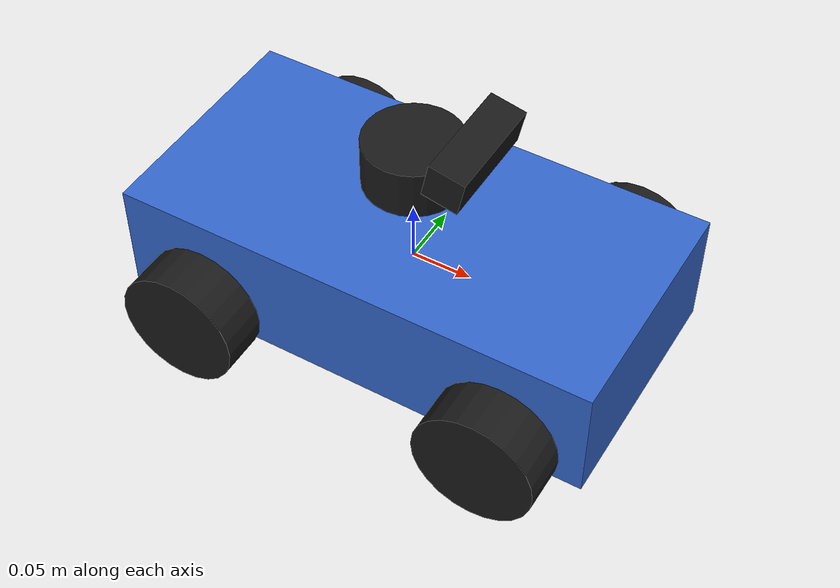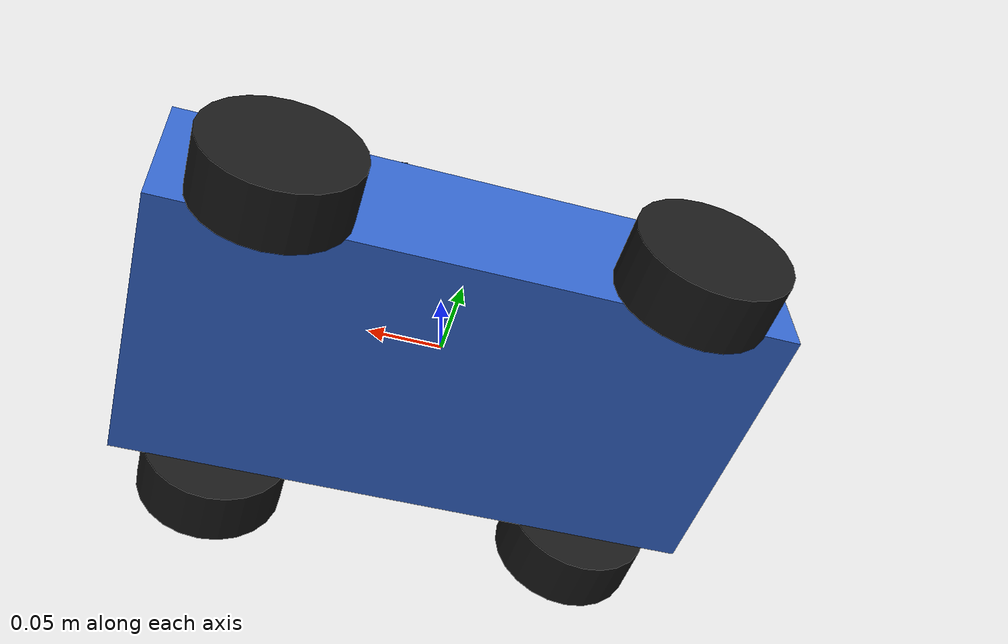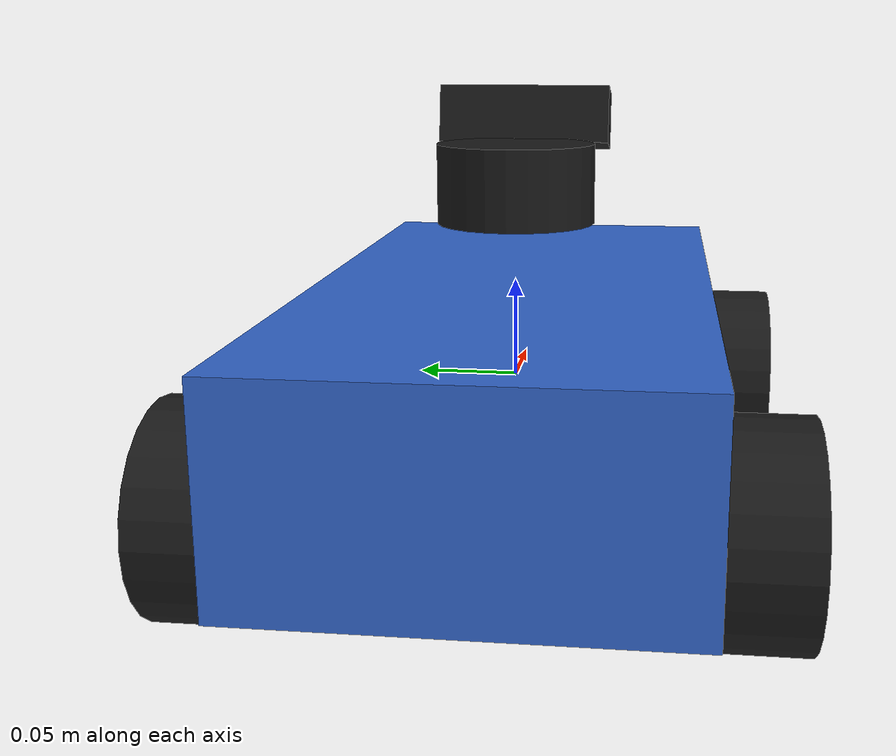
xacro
<?xml version="1.0"?>
<robot name="four_wheel_bot" xmlns:xacro="http://www.ros.org/wiki/xacro">
  <material name="blue"><color rgba="0.2 0.4 0.8 1"/></material>
  <material name="black"><color rgba="0.1 0.1 0.1 1"/></material>

  <link name="base_link">
    <visual>
      <geometry><box size="0.4 0.2 0.1"/></geometry>
      <material name="blue"/>
    </visual>
    <collision><geometry><box size="0.4 0.2 0.1"/></geometry></collision>
    <inertial>
      <mass value="5.0"/>
      <inertia ixx="0.0208" iyy="0.0708" izz="0.0833" ixy="0" ixz="0" iyz="0"/>
    </inertial>
  </link>
  <gazebo reference="base_link"><material>Gazebo/Blue</material></gazebo>

  <xacro:macro name="wheel" params="name x y">
    <link name="${name}_wheel">
      <visual>
        <origin rpy="1.5708 0 0"/>
        <geometry><cylinder radius="0.05" length="0.04"/></geometry>
        <material name="black"/>
      </visual>
      <collision>
        <geometry><sphere radius="0.05"/></geometry>
      </collision>
      <inertial>
        <mass value="0.3"/>
        <inertia ixx="0.000228" iyy="0.000375" izz="0.000228" ixy="0" ixz="0" iyz="0"/>
      </inertial>
    </link>
    <joint name="${name}_wheel_joint" type="continuous">
      <parent link="base_link"/><child link="${name}_wheel"/>
      <origin xyz="${x} ${y} -0.03"/><axis xyz="0 1 0"/>
      <limit effort="10" velocity="20"/>
      <dynamics damping="0.0" friction="0.0"/>
    </joint>
    <gazebo reference="${name}_wheel">
      <mu1>0.9</mu1><mu2>0.5</mu2>
      <fdir1>1 0 0</fdir1>
      <material>Gazebo/Black</material>
      <minDepth>0.001</minDepth>
      <kp>1e6</kp><kd>100</kd>
    </gazebo>
  </xacro:macro>

  <xacro:wheel name="front_left"  x="0.13"  y="0.12"/>
  <xacro:wheel name="rear_left"   x="-0.13" y="0.12"/>
  <xacro:wheel name="front_right" x="0.13"  y="-0.12"/>
  <xacro:wheel name="rear_right"  x="-0.13" y="-0.12"/>

  <ros2_control name="GazeboSystem" type="system">
    <hardware><plugin>gazebo_ros2_control/GazeboSystem</plugin></hardware>
    <joint name="front_left_wheel_joint">
      <command_interface name="velocity"><param name="min">-20</param><param name="max">20</param></command_interface>
      <state_interface name="position"/><state_interface name="velocity"/>
    </joint>
    <joint name="rear_left_wheel_joint">
      <command_interface name="velocity"><param name="min">-20</param><param name="max">20</param></command_interface>
      <state_interface name="position"/><state_interface name="velocity"/>
    </joint>
    <joint name="front_right_wheel_joint">
      <command_interface name="velocity"><param name="min">-20</param><param name="max">20</param></command_interface>
      <state_interface name="position"/><state_interface name="velocity"/>
    </joint>
    <joint name="rear_right_wheel_joint">
      <command_interface name="velocity"><param name="min">-20</param><param name="max">20</param></command_interface>
      <state_interface name="position"/><state_interface name="velocity"/>
    </joint>
    <joint name="head_pan_joint">
      <command_interface name="position"/>
      <state_interface name="position"/><state_interface name="velocity"/>
    </joint>
  </ros2_control>

  <gazebo>
    <plugin name="gazebo_ros2_control" filename="libgazebo_ros2_control.so">
      <parameters>$(find four_wheel_sim)/config/controllers.yaml</parameters>
    </plugin>
    <plugin name="ground_truth" filename="libgazebo_ros_p3d.so">
      <ros><remapping>odom:=odom_gt</remapping></ros>
      <body_name>base_link</body_name>
      <frame_name>world</frame_name>
      <update_rate>50.0</update_rate>
      <xyz_offset>0 0 0</xyz_offset>
      <rpy_offset>0 0 0</rpy_offset>
      <gaussian_noise>0.0</gaussian_noise>
    </plugin>
  </gazebo>

  <link name="camera_link">
    <visual>
      <geometry><box size="0.03 0.09 0.03"/></geometry>
      <material name="black"/>
    </visual>
    <inertial>
      <mass value="0.1"/>
      <inertia ixx="0.0001" iyy="0.0001" izz="0.0001" ixy="0" ixz="0" iyz="0"/>
    </inertial>
  </link>
  <link name="head_link">
    <visual>
      <geometry><cylinder radius="0.04" length="0.04"/></geometry>
      <material name="black"/>
    </visual>
    <inertial>
      <mass value="0.2"/>
      <inertia ixx="0.0002" iyy="0.0002" izz="0.0002" ixy="0" ixz="0" iyz="0"/>
    </inertial>
  </link>
  <joint name="head_pan_joint" type="continuous">
    <parent link="base_link"/><child link="head_link"/>
    <origin xyz="0 0 0.1"/><axis xyz="0 0 1"/>
    <limit effort="5" velocity="2.0"/>
    <dynamics damping="0.1"/>
  </joint>

  <joint name="camera_joint" type="fixed">
    <parent link="head_link"/><child link="camera_link"/>
    <origin xyz="0.05 0 0.03" rpy="0 0.2 0"/>
  </joint>

  <link name="camera_optical_frame"/>
  <joint name="camera_optical_joint" type="fixed">
    <parent link="camera_link"/><child link="camera_optical_frame"/>
    <origin rpy="-1.5708 0 -1.5708"/>
  </joint>

  <gazebo reference="camera_link">
    <sensor name="oak_d" type="depth">
      <always_on>true</always_on>
      <update_rate>15</update_rate>
      <camera>
        <horizontal_fov>1.22</horizontal_fov>
        <image><width>640</width><height>400</height><format>R8G8B8</format></image>
        <clip><near>0.3</near><far>8.0</far></clip>
      </camera>
      <plugin name="oak_d_plugin" filename="libgazebo_ros_camera.so">
        <camera_name>oak</camera_name>
        <frame_name>camera_optical_frame</frame_name>
        <min_depth>0.3</min_depth>
        <max_depth>8.0</max_depth>
      </plugin>
    </sensor>
  </gazebo>
    <gazebo reference="camera_link">
    <sensor name="camera_imu" type="imu">
      <always_on>true</always_on>
      <update_rate>100</update_rate>

      <imu>
        <angular_velocity>
          <x><noise type="gaussian"><mean>0.0</mean><stddev>0.002</stddev></noise></x>
          <y><noise type="gaussian"><mean>0.0</mean><stddev>0.002</stddev></noise></y>
          <z><noise type="gaussian"><mean>0.0</mean><stddev>0.002</stddev></noise></z>
        </angular_velocity>
        <linear_acceleration>
          <x><noise type="gaussian"><mean>0.0</mean><stddev>0.02</stddev></noise></x>
          <y><noise type="gaussian"><mean>0.0</mean><stddev>0.02</stddev></noise></y>
          <z><noise type="gaussian"><mean>0.0</mean><stddev>0.02</stddev></noise></z>
        </linear_acceleration>
      </imu>
      <plugin name="camera_imu_plugin" filename="libgazebo_ros_imu_sensor.so">
        <ros>
          <namespace>/imu</namespace>
          <remapping>~/out:=data</remapping>
        </ros>
        <frame_name>camera_link</frame_name>
        <initial_orientation_as_reference>false</initial_orientation_as_reference>
      </plugin>
    </sensor>
  </gazebo>

</robot>
